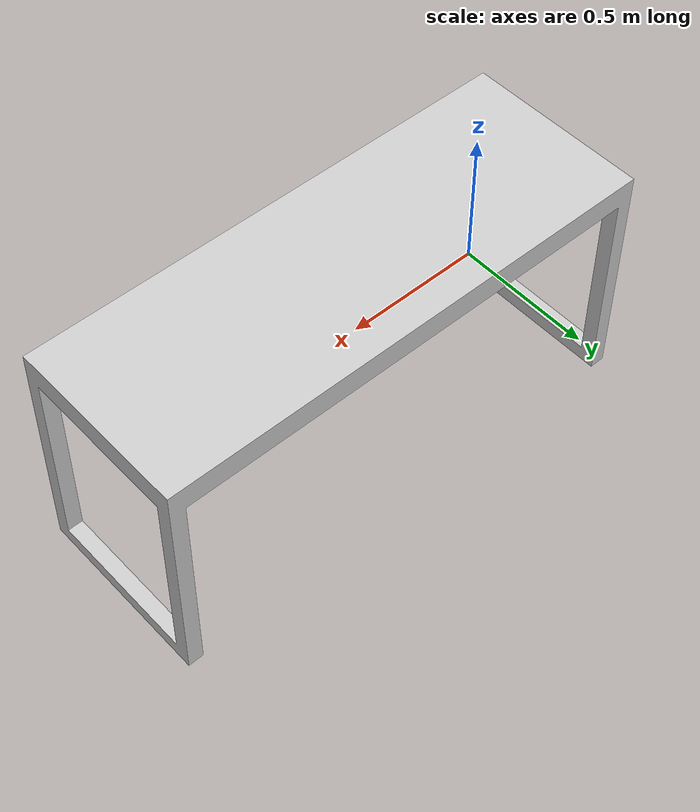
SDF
<?xml version="1.0"?>
<sdf version="1.5">
    <model name="mesa_de_canto">
        <static>true</static>

        <link name="mesa_de_canto">
            <pose>0 0 0 0 0 0</pose>
            <static>true</static>
            <inertial>
                <mass>1.0</mass>
                <inertia>
                    <!-- inertias are tricky to compute -->
                    <ixx>1</ixx> <!-- for a box: ixx = 0.083 * mass * (y*y + z*z) -->
                    <ixy>0</ixy> <!-- for a box: ixy = 0 -->
                    <ixz>0</ixz> <!-- for a box: ixz = 0 -->
                    <iyy>1</iyy> <!-- for a box: iyy = 0.083 * mass * (x*x + z*z) -->
                    <iyz>0</iyz> <!-- for a box: iyz = 0 -->
                    <izz>1</izz> <!-- for a box: izz = 0.083 * mass * (x*x + y*y) -->
                </inertia>
            </inertial>
            <collision name="collision">
                <geometry>
                    <mesh>
                    <uri>model://mesa_de_canto/mesa_de_canto.dae</uri>
                    <scale>1 1 1</scale>
                    </mesh>
                </geometry>
            </collision>
            <visual name="visual">
                <geometry>
                        <mesh>
                        <uri>model://mesa_de_canto/mesa_de_canto.dae</uri>
                        <scale>1 1 1</scale>
                        </mesh>
                </geometry>
            </visual>
        </link>
    </model>
 </sdf>
